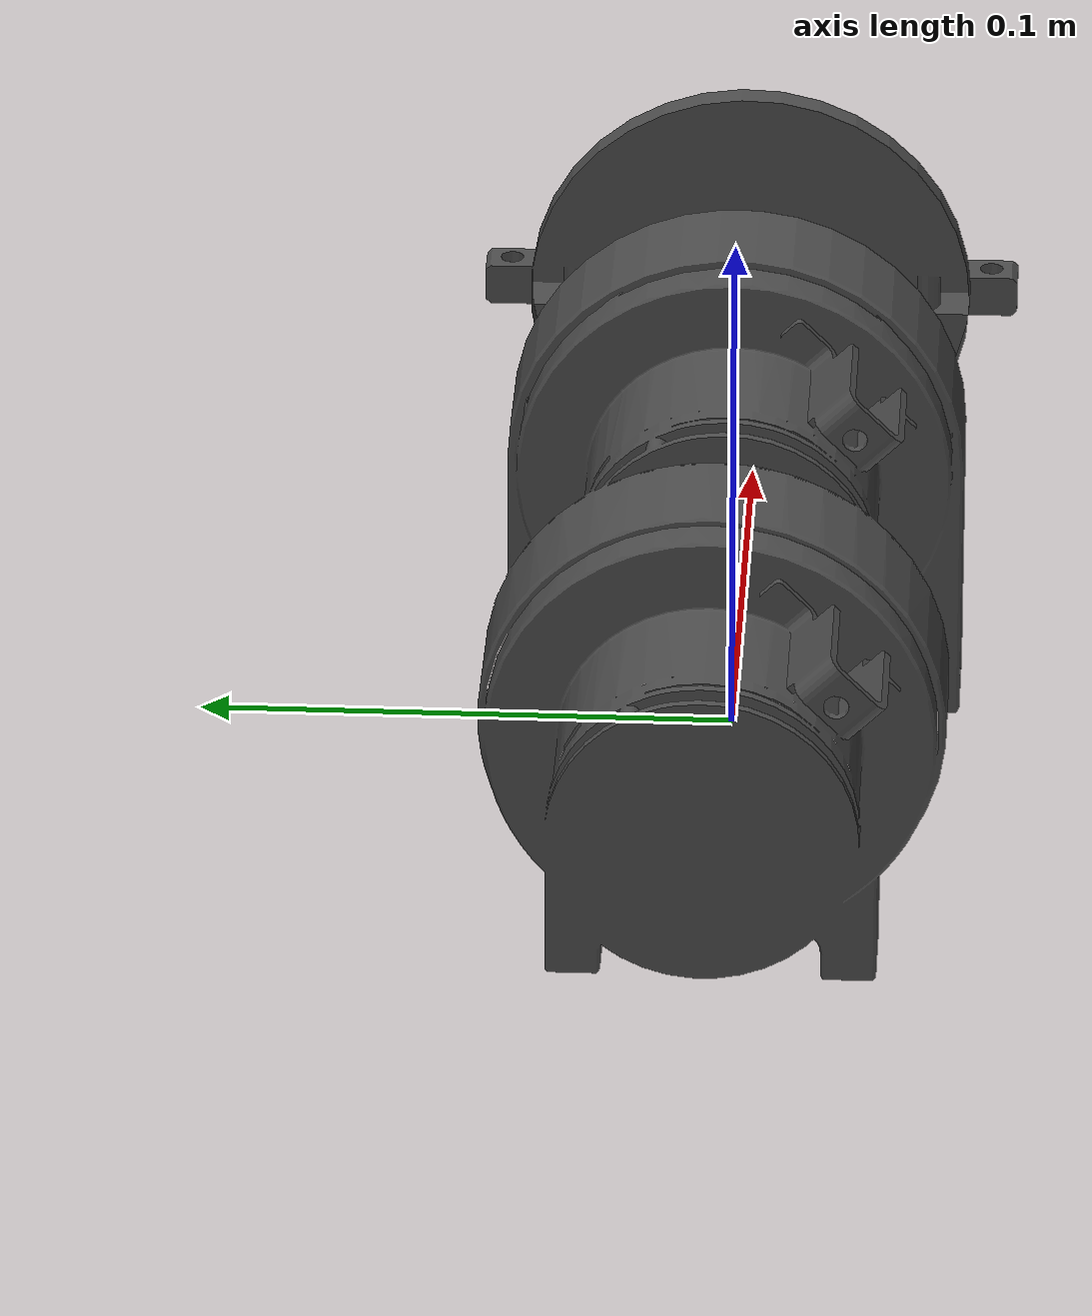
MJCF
<mujoco model="pelvis_base_link">
  <default>
    <default class="visual">
      <geom group="2" type="mesh" contype="0" conaffinity="0"/>
    </default>
    <default class="collision">
      <geom group="3" type="mesh"/>
    </default>
  </default>
  <asset>
    <material name="mtl_pelvis_base_link" specular="0.20000000000000004" shininess="1.0" rgba="0.29803922 0.29803922 0.29803922 1.0"/>
    <mesh file="pelvis_base_link.obj"/>
  </asset>
  <worldbody>
    <body name="pelvis_base_link">
      <geom material="mtl_pelvis_base_link" mesh="pelvis_base_link" class="visual"/>
      <geom mesh="pelvis_base_link" class="collision"/>
    </body>
  </worldbody>
</mujoco>
